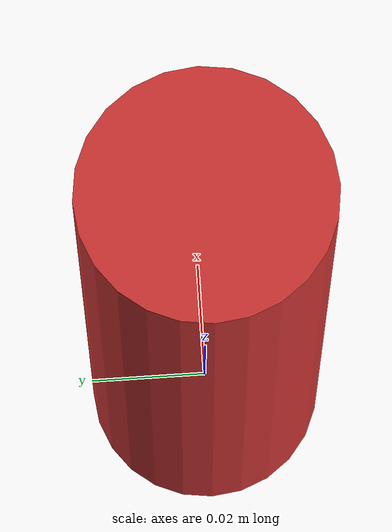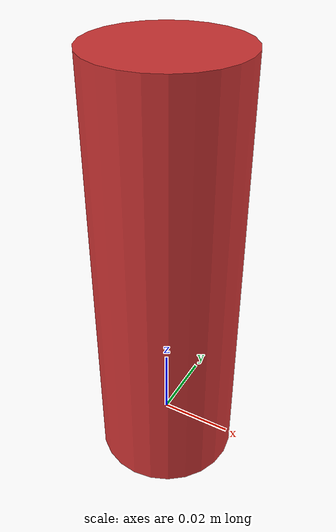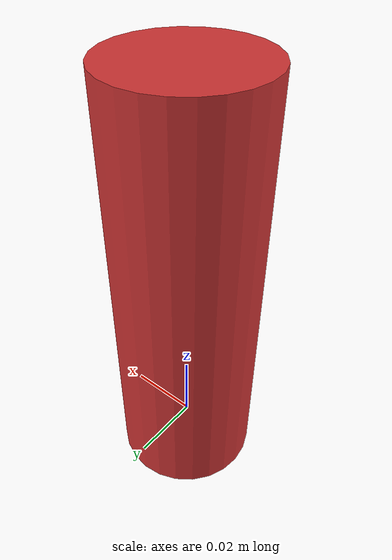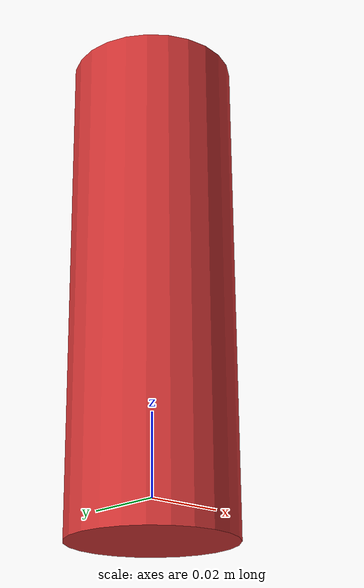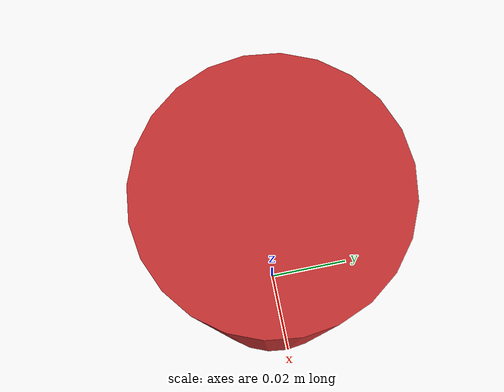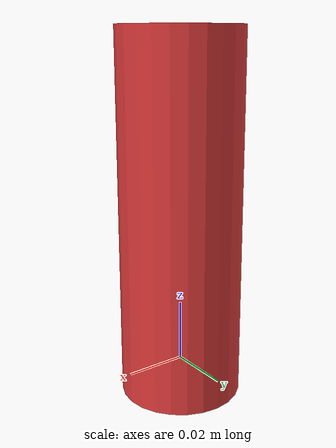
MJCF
<mujoco model="graspable_cylinder">
  <compiler angle="degree" coordinate="local"/>

  <asset>
    <material name="cylinder_material" rgba="0.8 0.2 0.2 1"/>
  </asset>

  <worldbody>
    <body name="cylinder" pos="0 0 0.05">
      <joint name="cylinder_free" type="free"/>
      <geom name="cylinder" type="cylinder" size="0.02 0.06"
            material="cylinder_material" mass="0.1"/>
    </body>
  </worldbody>
</mujoco>
